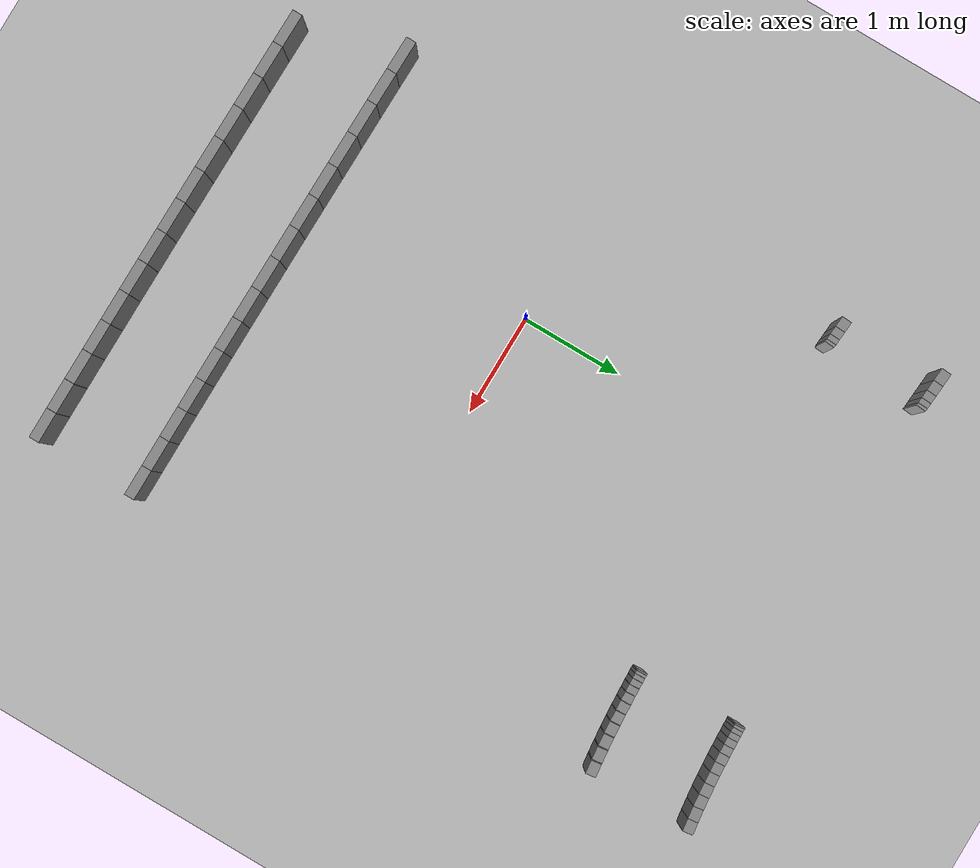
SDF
<sdf version="1.6">
 <world name="default">
  <include><uri>model://ground_plane</uri></include>
  <include><uri>model://sun</uri></include>
  <model name="wall_0_outward">
   <static>true</static>
   <link name="link">
    <collision name="collision">
     <geometry><box><size>0.028140372648619457 0.1 1.0</size></box></geometry>
    </collision>
    <visual name="visual">
     <geometry><box><size>0.028140372648619457 0.1 1.0</size></box></geometry>
     <material>
      <script><uri>file://media/materials/scripts/gazebo.material</uri><name>Gazebo/Gray</name></script>
     </material>
    </visual>
   </link>
   <pose>-1.1622154677570358 2.489480056677835 0.5 0 0 3.0679876131433996</pose>
  </model>
  <model name="wall_1_outward">
   <static>true</static>
   <link name="link">
    <collision name="collision">
     <geometry><box><size>0.055825213619563545 0.1 1.0</size></box></geometry>
    </collision>
    <visual name="visual">
     <geometry><box><size>0.055825213619563545 0.1 1.0</size></box></geometry>
     <material>
      <script><uri>file://media/materials/scripts/gazebo.material</uri><name>Gazebo/Gray</name></script>
     </material>
    </visual>
   </link>
   <pose>-1.20408429808078 2.49257132808138 0.5 0 0 3.067846946948879</pose>
  </model>
  <model name="wall_2_outward">
   <static>true</static>
   <link name="link">
    <collision name="collision">
     <geometry><box><size>0.08244396965421265 0.1 1.0</size></box></geometry>
    </collision>
    <visual name="visual">
     <geometry><box><size>0.08244396965421265 0.1 1.0</size></box></geometry>
     <material>
      <script><uri>file://media/materials/scripts/gazebo.material</uri><name>Gazebo/Gray</name></script>
     </material>
    </visual>
   </link>
   <pose>-1.2730303313313385 2.4976738967459715 0.5 0 0 3.0676326591313265</pose>
  </model>
  <model name="wall_3_outward">
   <static>true</static>
   <link name="link">
    <collision name="collision">
     <geometry><box><size>0.10753430926952938 0.1 1.0</size></box></geometry>
    </collision>
    <visual name="visual">
     <geometry><box><size>0.10753430926952938 0.1 1.0</size></box></geometry>
     <material>
      <script><uri>file://media/materials/scripts/gazebo.material</uri><name>Gazebo/Gray</name></script>
     </material>
    </visual>
   </link>
   <pose>-1.3677589461420014 2.504704263168981 0.5 0 0 3.0674205477627536</pose>
  </model>
  <model name="wall_117_outward">
   <static>true</static>
   <link name="link">
    <collision name="collision">
     <geometry><box><size>0.3343492521348256 0.1 1.0</size></box></geometry>
    </collision>
    <visual name="visual">
     <geometry><box><size>0.3343492521348256 0.1 1.0</size></box></geometry>
     <material>
      <script><uri>file://media/materials/scripts/gazebo.material</uri><name>Gazebo/Gray</name></script>
     </material>
    </visual>
   </link>
   <pose>-1.4172659547280226 -2.1549819348031547 0.5 0 0 -0.021630708846978396</pose>
  </model>
  <model name="wall_118_outward">
   <static>true</static>
   <link name="link">
    <collision name="collision">
     <geometry><box><size>0.33450129369341125 0.1 1.0</size></box></geometry>
    </collision>
    <visual name="visual">
     <geometry><box><size>0.33450129369341125 0.1 1.0</size></box></geometry>
     <material>
      <script><uri>file://media/materials/scripts/gazebo.material</uri><name>Gazebo/Gray</name></script>
     </material>
    </visual>
   </link>
   <pose>-1.0829128476204746 -2.1619229361456433 0.5 0 0 -0.01988271388038462</pose>
  </model>
  <model name="wall_119_outward">
   <static>true</static>
   <link name="link">
    <collision name="collision">
     <geometry><box><size>0.33388144293123556 0.1 1.0</size></box></geometry>
    </collision>
    <visual name="visual">
     <geometry><box><size>0.33388144293123556 0.1 1.0</size></box></geometry>
     <material>
      <script><uri>file://media/materials/scripts/gazebo.material</uri><name>Gazebo/Gray</name></script>
     </material>
    </visual>
   </link>
   <pose>-0.7487831376515343 -2.1683381543103275 0.5 0 0 -0.018510863924873746</pose>
  </model>
  <model name="wall_120_outward">
   <static>true</static>
   <link name="link">
    <collision name="collision">
     <geometry><box><size>0.33264679299315847 0.1 1.0</size></box></geometry>
    </collision>
    <visual name="visual">
     <geometry><box><size>0.33264679299315847 0.1 1.0</size></box></geometry>
     <material>
      <script><uri>file://media/materials/scripts/gazebo.material</uri><name>Gazebo/Gray</name></script>
     </material>
    </visual>
   </link>
   <pose>-0.4155727695194471 -2.174320463714849 0.5 0 0 -0.01739030556445779</pose>
  </model>
  <model name="wall_121_outward">
   <static>true</static>
   <link name="link">
    <collision name="collision">
     <geometry><box><size>0.33093459077308524 0.1 1.0</size></box></geometry>
    </collision>
    <visual name="visual">
     <geometry><box><size>0.33093459077308524 0.1 1.0</size></box></geometry>
     <material>
      <script><uri>file://media/materials/scripts/gazebo.material</uri><name>Gazebo/Gray</name></script>
     </material>
    </visual>
   </link>
   <pose>-0.08382952784442027 -2.1799292794613083 0.5 0 0 -0.016418162189786967</pose>
  </model>
  <model name="wall_122_outward">
   <static>true</static>
   <link name="link">
    <collision name="collision">
     <geometry><box><size>0.32886352233430943 0.1 1.0</size></box></geometry>
    </collision>
    <visual name="visual">
     <geometry><box><size>0.32886352233430943 0.1 1.0</size></box></geometry>
     <material>
      <script><uri>file://media/materials/scripts/gazebo.material</uri><name>Gazebo/Gray</name></script>
     </material>
    </visual>
   </link>
   <pose>0.24602744488529366 -2.1851964155968027 0.5 0 0 -0.015512158752550801</pose>
  </model>
  <model name="wall_123_outward">
   <static>true</static>
   <link name="link">
    <collision name="collision">
     <geometry><box><size>0.32653154499854453 0.1 1.0</size></box></geometry>
    </collision>
    <visual name="visual">
     <geometry><box><size>0.32653154499854453 0.1 1.0</size></box></geometry>
     <material>
      <script><uri>file://media/materials/scripts/gazebo.material</uri><name>Gazebo/Gray</name></script>
     </material>
    </visual>
   </link>
   <pose>0.5736877673115767 -2.190132497778353 0.5 0 0 -0.014611622145655223</pose>
  </model>
  <model name="wall_124_outward">
   <static>true</static>
   <link name="link">
    <collision name="collision">
     <geometry><box><size>0.3240164192819175 0.1 1.0</size></box></geometry>
    </collision>
    <visual name="visual">
     <geometry><box><size>0.3240164192819175 0.1 1.0</size></box></geometry>
     <material>
      <script><uri>file://media/materials/scripts/gazebo.material</uri><name>Gazebo/Gray</name></script>
     </material>
    </visual>
   </link>
   <pose>0.8989291843758371 -2.1947325661140438 0.5 0 0 -0.01366995180546447</pose>
  </model>
  <model name="wall_125_outward">
   <static>true</static>
   <link name="link">
    <collision name="collision">
     <geometry><box><size>0.32137712179323413 0.1 1.0</size></box></geometry>
    </collision>
    <visual name="visual">
     <geometry><box><size>0.32137712179323413 0.1 1.0</size></box></geometry>
     <material>
      <script><uri>file://media/materials/scripts/gazebo.material</uri><name>Gazebo/Gray</name></script>
     </material>
    </visual>
   </link>
   <pose>1.221597938526929 -2.1989816038408705 0.5 0 0 -0.012661241276962897</pose>
  </model>
  <model name="wall_126_outward">
   <static>true</static>
   <link name="link">
    <collision name="collision">
     <geometry><box><size>0.3186509595862095 0.1 1.0</size></box></geometry>
    </collision>
    <visual name="visual">
     <geometry><box><size>0.3186509595862095 0.1 1.0</size></box></geometry>
     <material>
      <script><uri>file://media/materials/scripts/gazebo.material</uri><name>Gazebo/Gray</name></script>
     </material>
    </visual>
   </link>
   <pose>1.5415884359099705 -2.2028594035083384 0.5 0 0 -0.011569891479919754</pose>
  </model>
  <model name="wall_127_outward">
   <static>true</static>
   <link name="link">
    <collision name="collision">
     <geometry><box><size>0.3158594668355228 0.1 1.0</size></box></geometry>
    </collision>
    <visual name="visual">
     <geometry><box><size>0.3158594668355228 0.1 1.0</size></box></geometry>
     <material>
      <script><uri>file://media/materials/scripts/gazebo.material</uri><name>Gazebo/Gray</name></script>
     </material>
    </visual>
   </link>
   <pose>1.8588244734232942 -2.206342409893896 0.5 0 0 -0.010382455688424623</pose>
  </model>
  <model name="wall_128_outward">
   <static>true</static>
   <link name="link">
    <collision name="collision">
     <geometry><box><size>0.3130063467733465 0.1 1.0</size></box></geometry>
    </collision>
    <visual name="visual">
     <geometry><box><size>0.3130063467733465 0.1 1.0</size></box></geometry>
     <material>
      <script><uri>file://media/materials/scripts/gazebo.material</uri><name>Gazebo/Gray</name></script>
     </material>
    </visual>
   </link>
   <pose>2.173242403721133 -2.2094045410623773 0.5 0 0 -0.009089155976046625</pose>
  </model>
  <model name="wall_129_outward">
   <static>true</static>
   <link name="link">
    <collision name="collision">
     <geometry><box><size>0.3100769272049285 0.1 1.0</size></box></geometry>
    </collision>
    <visual name="visual">
     <geometry><box><size>0.3100769272049285 0.1 1.0</size></box></geometry>
     <material>
      <script><uri>file://media/materials/scripts/gazebo.material</uri><name>Gazebo/Gray</name></script>
     </material>
    </visual>
   </link>
   <pose>2.484773004230438 -2.2120176474997324 0.5 0 0 -0.007679745694210032</pose>
  </model>
  <model name="wall_130_outward">
   <static>true</static>
   <link name="link">
    <collision name="collision">
     <geometry><box><size>0.3070367761473882 0.1 1.0</size></box></geometry>
    </collision>
    <visual name="visual">
     <geometry><box><size>0.3070367761473882 0.1 1.0</size></box></geometry>
     <material>
      <script><uri>file://media/materials/scripts/gazebo.material</uri><name>Gazebo/Gray</name></script>
     </material>
    </visual>
   </link>
   <pose>2.7933224042082534 -2.2141486012222606 0.5 0 0 -0.006125099048085566</pose>
  </model>
  <model name="wall_131_outward">
   <static>true</static>
   <link name="link">
    <collision name="collision"><geometry><box><size>0.303830010964234 0.1 1.0</size></box></geometry></collision>
    <visual name="visual">
     <geometry><box><size>0.303830010964234 0.1 1.0</size></box></geometry>
     <material>
      <script><uri>file://media/materials/scripts/gazebo.material</uri><name>Gazebo/Gray</name></script>
     </material>
    </visual>
   </link>
   <pose>3.098751464220999 -2.215753517969673 0.5 0 0 -0.00437487667725614</pose>
  </model>
  <model name="wall_303_outward">
   <static>true</static>
   <link name="link">
    <collision name="collision">
     <geometry><box><size>0.13046753921735724 0.1 1.0</size></box></geometry>
    </collision>
    <visual name="visual">
     <geometry><box><size>0.13046753921735724 0.1 1.0</size></box></geometry>
     <material>
      <script><uri>file://media/materials/scripts/gazebo.material</uri><name>Gazebo/Gray</name></script>
     </material>
    </visual>
   </link>
   <pose>3.207739968030117 2.60791717843035 0.5 0 0 -3.0229993824089467</pose>
  </model>
  <model name="wall_304_outward">
   <static>true</static>
   <link name="link">
    <collision name="collision">
     <geometry><box><size>0.008949121451481638 0.1 1.0</size></box></geometry>
    </collision>
    <visual name="visual">
     <geometry><box><size>0.008949121451481638 0.1 1.0</size></box></geometry>
     <material>
      <script><uri>file://media/materials/scripts/gazebo.material</uri><name>Gazebo/Gray</name></script>
     </material>
    </visual>
   </link>
   <pose>3.1385167052676533 2.599709387415867 0.5 0 0 -3.0319486233158</pose>
  </model>
  <model name="wall_305_outward">
   <static>true</static>
   <link name="link">
    <collision name="collision">
     <geometry><box><size>0.12624586399154972 0.1 1.0</size></box></geometry>
    </collision>
    <visual name="visual">
     <geometry><box><size>0.12624586399154972 0.1 1.0</size></box></geometry>
     <material>
      <script><uri>file://media/materials/scripts/gazebo.material</uri><name>Gazebo/Gray</name></script>
     </material>
    </visual>
   </link>
   <pose>3.071265827081879 2.5928743464705697 0.5 0 0 -3.040897864222612</pose>
  </model>
  <model name="wall_306_outward">
   <static>true</static>
   <link name="link">
    <collision name="collision">
     <geometry><box><size>0.007505698256718448 0.1 1.0</size></box></geometry>
    </collision>
    <visual name="visual">
     <geometry><box><size>0.007505698256718448 0.1 1.0</size></box></geometry>
     <material>
      <script><uri>file://media/materials/scripts/gazebo.material</uri><name>Gazebo/Gray</name></script>
     </material>
    </visual>
   </link>
   <pose>3.004726074705722 2.5861797136106315 0.5 0 0 -3.0484036329540096</pose>
  </model>
  <model name="wall_307_outward">
   <static>true</static>
   <link name="link">
    <collision name="collision">
     <geometry><box><size>0.12064989694440542 0.1 1.0</size></box></geometry>
    </collision>
    <visual name="visual">
     <geometry><box><size>0.12064989694440542 0.1 1.0</size></box></geometry>
     <material>
      <script><uri>file://media/materials/scripts/gazebo.material</uri><name>Gazebo/Gray</name></script>
     </material>
    </visual>
   </link>
   <pose>2.940885866518805 2.5806679797645042 0.5 0 0 -3.0559094016853923</pose>
  </model>
  <model name="wall_308_outward">
   <static>true</static>
   <link name="link">
    <collision name="collision">
     <geometry><box><size>0.006214637166314889 0.1 1.0</size></box></geometry>
    </collision>
    <visual name="visual">
     <geometry><box><size>0.006214637166314889 0.1 1.0</size></box></geometry>
     <material>
      <script><uri>file://media/materials/scripts/gazebo.material</uri><name>Gazebo/Gray</name></script>
     </material>
    </visual>
   </link>
   <pose>2.8776847120232025 2.5752587899416026 0.5 0 0 -3.0621240788556916</pose>
  </model>
  <model name="wall_309_outward">
   <static>true</static>
   <link name="link">
    <collision name="collision">
     <geometry><box><size>0.11366733680068042 0.1 1.0</size></box></geometry>
    </collision>
    <visual name="visual">
     <geometry><box><size>0.11366733680068042 0.1 1.0</size></box></geometry>
     <material>
      <script><uri>file://media/materials/scripts/gazebo.material</uri><name>Gazebo/Gray</name></script>
     </material>
    </visual>
   </link>
   <pose>2.817905951979694 2.5708525503267445 0.5 0 0 -3.068338756026061</pose>
  </model>
  <model name="wall_310_outward">
   <static>true</static>
   <link name="link">
    <collision name="collision">
     <geometry><box><size>0.005069601279111928 0.1 1.0</size></box></geometry>
    </collision>
    <visual name="visual">
     <geometry><box><size>0.005069601279111928 0.1 1.0</size></box></geometry>
     <material>
      <script><uri>file://media/materials/scripts/gazebo.material</uri><name>Gazebo/Gray</name></script>
     </material>
    </visual>
   </link>
   <pose>2.7586957932711247 2.5665202854103226 0.5 0 0 -3.07340837902098</pose>
  </model>
  <model name="wall_311_outward">
   <static>true</static>
   <link name="link">
    <collision name="collision">
     <geometry><box><size>0.10531123472927832 0.1 1.0</size></box></geometry>
    </collision>
    <visual name="visual">
     <geometry><box><size>0.10531123472927832 0.1 1.0</size></box></geometry>
     <material>
      <script><uri>file://media/materials/scripts/gazebo.material</uri><name>Gazebo/Gray</name></script>
     </material>
    </visual>
   </link>
   <pose>2.703616106192793 2.5630264507724183 0.5 0 0 -3.07847800201582</pose>
  </model>
  <model name="wall_312_outward">
   <static>true</static>
   <link name="link">
    <collision name="collision">
     <geometry><box><size>0.0040732172462499446 0.1 1.0</size></box></geometry>
    </collision>
    <visual name="visual">
     <geometry><box><size>0.0040732172462499446 0.1 1.0</size></box></geometry>
     <material>
      <script><uri>file://media/materials/scripts/gazebo.material</uri><name>Gazebo/Gray</name></script>
     </material>
    </visual>
   </link>
   <pose>2.649032269813892 2.55958514136469 0.5 0 0 -3.082551230525299</pose>
  </model>
  <model name="wall_313_outward">
   <static>true</static>
   <link name="link">
    <collision name="collision">
     <geometry><box><size>0.0956206454724584 0.1 1.0</size></box></geometry>
    </collision>
    <visual name="visual">
     <geometry><box><size>0.0956206454724584 0.1 1.0</size></box></geometry>
     <material>
      <script><uri>file://media/materials/scripts/gazebo.material</uri><name>Gazebo/Gray</name></script>
     </material>
    </visual>
   </link>
   <pose>2.5992610984377293 2.556838243060853 0.5 0 0 -3.086624459034872</pose>
  </model>
  <model name="wall_314_outward">
   <static>true</static>
   <link name="link">
    <collision name="collision">
     <geometry><box><size>0.0032147562011742513 0.1 1.0</size></box></geometry>
    </collision>
    <visual name="visual">
     <geometry><box><size>0.0032147562011742513 0.1 1.0</size></box></geometry>
     <material>
      <script><uri>file://media/materials/scripts/gazebo.material</uri><name>Gazebo/Gray</name></script>
     </material>
    </visual>
   </link>
   <pose>2.5499177610533317 2.554128368976377 0.5 0 0 -3.0898392207733476</pose>
  </model>
  <model name="wall_315_outward">
   <static>true</static>
   <link name="link">
    <collision name="collision">
     <geometry><box><size>0.08466341760344048 0.1 1.0</size></box></geometry>
    </collision>
    <visual name="visual">
     <geometry><box><size>0.08466341760344048 0.1 1.0</size></box></geometry>
     <material>
      <script><uri>file://media/materials/scripts/gazebo.material</uri><name>Gazebo/Gray</name></script>
     </material>
    </visual>
   </link>
   <pose>2.506030683303695 2.551991300610061 0.5 0 0 -3.09305398251174</pose>
  </model>
  <model name="wall_316_outward">
   <static>true</static>
   <link name="link">
    <collision name="collision">
     <geometry><box><size>0.0024870756125042405 0.1 1.0</size></box></geometry>
    </collision>
    <visual name="visual">
     <geometry><box><size>0.0024870756125042405 0.1 1.0</size></box></geometry>
     <material>
      <script><uri>file://media/materials/scripts/gazebo.material</uri><name>Gazebo/Gray</name></script>
     </material>
    </visual>
   </link>
   <pose>2.4625066120966403 2.549880135790681 0.5 0 0 -3.0955410606882756</pose>
  </model>
  <model name="wall_317_outward">
   <static>true</static>
   <link name="link">
    <collision name="collision">
     <geometry><box><size>0.07253846112976793 0.1 1.0</size></box></geometry>
    </collision>
    <visual name="visual">
     <geometry><box><size>0.07253846112976793 0.1 1.0</size></box></geometry>
     <material>
      <script><uri>file://media/materials/scripts/gazebo.material</uri><name>Gazebo/Gray</name></script>
     </material>
    </visual>
   </link>
   <pose>2.4250295737523553 2.548243337444639 0.5 0 0 -3.0980281388647355</pose>
  </model>
  <model name="wall_318_outward">
   <static>true</static>
   <link name="link">
    <collision name="collision">
     <geometry><box><size>0.0018633351127018652 0.1 1.0</size></box></geometry>
    </collision>
    <visual name="visual">
     <geometry><box><size>0.0018633351127018652 0.1 1.0</size></box></geometry>
     <material>
      <script><uri>file://media/materials/scripts/gazebo.material</uri><name>Gazebo/Gray</name></script>
     </material>
    </visual>
   </link>
   <pose>2.3878638972371826 2.5466249453804424 0.5 0 0 -3.0998914750555246</pose>
  </model>
  <model name="wall_319_outward">
   <static>true</static>
   <link name="link">
    <collision name="collision">
     <geometry><box><size>0.05937721278257338 0.1 1.0</size></box></geometry>
    </collision>
    <visual name="visual">
     <geometry><box><size>0.05937721278257338 0.1 1.0</size></box></geometry>
     <material>
      <script><uri>file://media/materials/scripts/gazebo.material</uri><name>Gazebo/Gray</name></script>
     </material>
    </visual>
   </link>
   <pose>2.357267988842117 2.545403687801829 0.5 0 0 -3.101754811246653</pose>
  </model>
  <model name="wall_320_outward">
   <static>true</static>
   <link name="link">
    <collision name="collision">
     <geometry><box><size>0.0013483112834920489 0.1 1.0</size></box></geometry>
    </collision>
    <visual name="visual">
     <geometry><box><size>0.0013483112834920489 0.1 1.0</size></box></geometry>
     <material>
      <script><uri>file://media/materials/scripts/gazebo.material</uri><name>Gazebo/Gray</name></script>
     </material>
    </visual>
   </link>
   <pose>2.326929281699816 2.5441953290708983 0.5 0 0 -3.1031031229387716</pose>
  </model>
  <model name="wall_321_outward">
   <static>true</static>
   <link name="link">
    <collision name="collision">
     <geometry><box><size>0.04534154176574482 0.1 1.0</size></box></geometry>
    </collision>
    <visual name="visual">
     <geometry><box><size>0.04534154176574482 0.1 1.0</size></box></geometry>
     <material>
      <script><uri>file://media/materials/scripts/gazebo.material</uri><name>Gazebo/Gray</name></script>
     </material>
    </visual>
   </link>
   <pose>2.303600489503803 2.543327561054495 0.5 0 0 -3.104451434630689</pose>
  </model>
  <model name="wall_322_outward">
   <static>true</static>
   <link name="link">
    <collision name="collision">
     <geometry><box><size>0.0009135970784180047 0.1 1.0</size></box></geometry>
    </collision>
    <visual name="visual">
     <geometry><box><size>0.0009135970784180047 0.1 1.0</size></box></geometry>
     <material>
      <script><uri>file://media/materials/scripts/gazebo.material</uri><name>Gazebo/Gray</name></script>
     </material>
    </visual>
   </link>
   <pose>2.280488854837753 2.542469189461003 0.5 0 0 -3.1053650318361288</pose>
  </model>
  <model name="wall_323_outward">
   <static>true</static>
   <link name="link">
    <collision name="collision">
     <geometry><box><size>0.030621175903839427 0.1 1.0</size></box></geometry>
    </collision>
    <visual name="visual">
     <geometry><box><size>0.030621175903839427 0.1 1.0</size></box></geometry>
     <material>
      <script><uri>file://media/materials/scripts/gazebo.material</uri><name>Gazebo/Gray</name></script>
     </material>
    </visual>
   </link>
   <pose>2.2647313138487557 2.5419120782484015 0.5 0 0 -3.106278629041706</pose>
  </model>
  <model name="wall_324_outward">
   <static>true</static>
   <link name="link">
    <collision name="collision">
     <geometry><box><size>0.0005376412775519356 0.1 1.0</size></box></geometry>
    </collision>
    <visual name="visual">
     <geometry><box><size>0.0005376412775519356 0.1 1.0</size></box></geometry>
     <material>
      <script><uri>file://media/materials/scripts/gazebo.material</uri><name>Gazebo/Gray</name></script>
     </material>
    </visual>
   </link>
   <pose>2.2491616135715375 2.5413621654155554 0.5 0 0 -3.1068162703456066</pose>
  </model>
  <model name="wall_325_outward">
   <static>true</static>
   <link name="link">
    <collision name="collision">
     <geometry><box><size>0.015429990358384568 0.1 1.0</size></box></geometry>
    </collision>
    <visual name="visual">
     <geometry><box><size>0.015429990358384568 0.1 1.0</size></box></geometry>
     <material>
      <script><uri>file://media/materials/scripts/gazebo.material</uri><name>Gazebo/Gray</name></script>
     </material>
    </visual>
   </link>
   <pose>2.2411824819622908 2.5410887185686724 0.5 0 0 -3.107353911648613</pose>
  </model>
  <model name="wall_0_inward">
   <static>true</static>
   <link name="link">
    <collision name="collision">
     <geometry><box><size>0.028105183917032178 0.1 1.0</size></box></geometry>
    </collision>
    <visual name="visual">
     <geometry><box><size>0.028105183917032178 0.1 1.0</size></box></geometry>
     <material>
      <script><uri>file://media/materials/scripts/gazebo.material</uri><name>Gazebo/Gray</name></script>
     </material>
    </visual>
   </link>
   <pose>-1.0886593242782392 3.4867711345814163 0.5 0 0 3.0679876131433965</pose>
  </model>
  <model name="wall_1_inward">
   <static>true</static>
   <link name="link">
    <collision name="collision">
     <geometry><box><size>0.055666062833797623 0.1 1.0</size></box></geometry>
    </collision>
    <visual name="visual">
     <geometry><box><size>0.055666062833797623 0.1 1.0</size></box></geometry>
     <material>
      <script><uri>file://media/materials/scripts/gazebo.material</uri><name>Gazebo/Gray</name></script>
     </material>
    </visual>
   </link>
   <pose>-1.130431248584888 3.4898552515567816 0.5 0 0 3.0678468582257628</pose>
  </model>
  <model name="wall_2_inward">
   <static>true</static>
   <link name="link">
    <collision name="collision">
     <geometry><box><size>0.08223019669286277 0.1 1.0</size></box></geometry>
    </collision>
    <visual name="visual">
     <geometry><box><size>0.08223019669286277 0.1 1.0</size></box></geometry>
     <material>
      <script><uri>file://media/materials/scripts/gazebo.material</uri><name>Gazebo/Gray</name></script>
     </material>
    </visual>
   </link>
   <pose>-1.1991913278468374 3.494944067251871 0.5 0 0 3.067632519821713</pose>
  </model>
  <model name="wall_3_inward">
   <static>true</static>
   <link name="link">
    <collision name="collision">
     <geometry><box><size>0.10733725442025505 0.1 1.0</size></box></geometry>
    </collision>
    <visual name="visual">
     <geometry><box><size>0.10733725442025505 0.1 1.0</size></box></geometry>
     <material>
      <script><uri>file://media/materials/scripts/gazebo.material</uri><name>Gazebo/Gray</name></script>
     </material>
    </visual>
   </link>
   <pose>-1.2937150910188486 3.5019592455773236 0.5 0 0 3.067420443199626</pose>
  </model>
  <model name="wall_4_inward">
   <static>true</static>
   <link name="link">
    <collision name="collision">
     <geometry><box><size>0.13058685729663236 0.1 1.0</size></box></geometry>
    </collision>
    <visual name="visual">
     <geometry><box><size>0.13058685729663236 0.1 1.0</size></box></geometry>
     <material>
      <script><uri>file://media/materials/scripts/gazebo.material</uri><name>Gazebo/Gray</name></script>
     </material>
    </visual>
   </link>
   <pose>-1.4123493248439891 3.5107847324103134 0.5 0 0 3.0672684536841874</pose>
  </model>
  <model name="wall_228_inward">
   <static>true</static>
   <link name="link">
    <collision name="collision">
     <geometry><box><size>0.0008739973720259871 0.1 1.0</size></box></geometry>
    </collision>
    <visual name="visual">
     <geometry><box><size>0.0008739973720259871 0.1 1.0</size></box></geometry>
     <material>
      <script><uri>file://media/materials/scripts/gazebo.material</uri><name>Gazebo/Gray</name></script>
     </material>
    </visual>
   </link>
   <pose>-1.2708856575219625 -3.1583823456853173 0.5 0 0 -0.02075671136366923</pose>
  </model>
  <model name="wall_229_inward">
   <static>true</static>
   <link name="link">
    <collision name="collision">
     <geometry><box><size>0.3352812550892098 0.1 1.0</size></box></geometry>
    </collision>
    <visual name="visual">
     <geometry><box><size>0.3352812550892098 0.1 1.0</size></box></geometry>
     <material>
      <script><uri>file://media/materials/scripts/gazebo.material</uri><name>Gazebo/Gray</name></script>
     </material>
    </visual>
   </link>
   <pose>-1.1028412603750213 -3.161724346714658 0.5 0 0 -0.019882713880385216</pose>
  </model>
  <model name="wall_230_inward">
   <static>true</static>
   <link name="link">
    <collision name="collision">
     <geometry><box><size>0.0006859249239686842 0.1 1.0</size></box></geometry>
    </collision>
    <visual name="visual">
     <geometry><box><size>0.0006859249239686842 0.1 1.0</size></box></geometry>
     <material>
      <script><uri>file://media/materials/scripts/gazebo.material</uri><name>Gazebo/Gray</name></script>
     </material>
    </visual>
   </link>
   <pose>-0.934890868508756 -3.1650638611133477 0.5 0 0 -0.01919678890304701</pose>
  </model>
  <model name="wall_231_inward">
   <static>true</static>
   <link name="link">
    <collision name="collision">
     <geometry><box><size>0.3345045450928907 0.1 1.0</size></box></geometry>
    </collision>
    <visual name="visual">
     <geometry><box><size>0.3345045450928907 0.1 1.0</size></box></geometry>
     <material>
      <script><uri>file://media/materials/scripts/gazebo.material</uri><name>Gazebo/Gray</name></script>
     </material>
    </visual>
   </link>
   <pose>-0.7673243505436858 -3.168166251740665 0.5 0 0 -0.01851086392487363</pose>
  </model>
  <model name="wall_232_inward">
   <static>true</static>
   <link name="link">
    <collision name="collision">
     <geometry><box><size>0.0005602791508951867 0.1 1.0</size></box></geometry>
    </collision>
    <visual name="visual">
     <geometry><box><size>0.0005602791508951867 0.1 1.0</size></box></geometry>
     <material>
      <script><uri>file://media/materials/scripts/gazebo.material</uri><name>Gazebo/Gray</name></script>
     </material>
    </visual>
   </link>
   <pose>-0.5998206374059589 -3.171267087393497 0.5 0 0 -0.0179505847442285</pose>
  </model>
  <model name="wall_233_inward">
   <static>true</static>
   <link name="link">
    <collision name="collision">
     <geometry><box><size>0.33365604008679656 0.1 1.0</size></box></geometry>
    </collision>
    <visual name="visual">
     <geometry><box><size>0.33365604008679656 0.1 1.0</size></box></geometry>
     <material>
      <script><uri>file://media/materials/scripts/gazebo.material</uri><name>Gazebo/Gray</name></script>
     </material>
    </visual>
   </link>
   <pose>-0.4327377465221457 -3.1741730416941616 0.5 0 0 -0.017389597452995093</pose>
  </model>
  <model name="wall_234_inward">
   <static>true</static>
   <link name="link">
    <collision name="collision">
     <geometry><box><size>0.3318571291669647 0.1 1.0</size></box></geometry>
    </collision>
    <visual name="visual">
     <geometry><box><size>0.3318571291669647 0.1 1.0</size></box></geometry>
     <material>
      <script><uri>file://media/materials/scripts/gazebo.material</uri><name>Gazebo/Gray</name></script>
     </material>
    </visual>
   </link>
   <pose>-0.1000287468351033 -3.1797979847018256 0.5 0 0 -0.016417543819636112</pose>
  </model>
  <model name="wall_235_inward">
   <static>true</static>
   <link name="link">
    <collision name="collision">
     <geometry><box><size>0.3297654256186966 0.1 1.0</size></box></geometry>
    </collision>
    <visual name="visual">
     <geometry><box><size>0.3297654256186966 0.1 1.0</size></box></geometry>
     <material>
      <script><uri>file://media/materials/scripts/gazebo.material</uri><name>Gazebo/Gray</name></script>
     </material>
    </visual>
   </link>
   <pose>0.2307403335685589 -3.1850794846924924 0.5 0 0 -0.015511543947250924</pose>
  </model>
  <model name="wall_236_inward">
   <static>true</static>
   <link name="link">
    <collision name="collision">
     <geometry><box><size>0.3274629318687377 0.1 1.0</size></box></geometry>
    </collision>
    <visual name="visual">
     <geometry><box><size>0.3274629318687377 0.1 1.0</size></box></geometry>
     <material>
      <script><uri>file://media/materials/scripts/gazebo.material</uri><name>Gazebo/Gray</name></script>
     </material>
    </visual>
   </link>
   <pose>0.5593172002977445 -3.1900291539317447 0.5 0 0 -0.014610945166005198</pose>
  </model>
  <model name="wall_237_inward">
   <static>true</static>
   <link name="link">
    <collision name="collision">
     <geometry><box><size>0.3245040145375153 0.1 1.0</size></box></geometry>
    </collision>
    <visual name="visual">
     <geometry><box><size>0.3245040145375153 0.1 1.0</size></box></geometry>
     <material>
      <script><uri>file://media/materials/scripts/gazebo.material</uri><name>Gazebo/Gray</name></script>
     </material>
    </visual>
   </link>
   <pose>0.8852680375540438 -3.1946392483288086 0.5 0 0 -0.013669951805465387</pose>
  </model>
  <model name="wall_238_inward">
   <static>true</static>
   <link name="link">
    <collision name="collision">
     <geometry><box><size>0.0005043552428692558 0.1 1.0</size></box></geometry>
    </collision>
    <visual name="visual">
     <geometry><box><size>0.0005043552428692558 0.1 1.0</size></box></geometry>
     <material>
      <script><uri>file://media/materials/scripts/gazebo.material</uri><name>Gazebo/Gray</name></script>
     </material>
    </visual>
   </link>
   <pose>1.0477570410051142 -3.196860476344063 0.5 0 0 -0.01316559654074366</pose>
  </model>
  <model name="wall_239_inward">
   <static>true</static>
   <link name="link">
    <collision name="collision">
     <geometry><box><size>0.32190213692352027 0.1 1.0</size></box></geometry>
    </collision>
    <visual name="visual">
     <geometry><box><size>0.32190213692352027 0.1 1.0</size></box></geometry>
     <material>
      <script><uri>file://media/materials/scripts/gazebo.material</uri><name>Gazebo/Gray</name></script>
     </material>
    </visual>
   </link>
   <pose>1.2089473646116868 -3.198901582182298 0.5 0 0 -0.012661241276961782</pose>
  </model>
  <model name="wall_240_inward">
   <static>true</static>
   <link name="link">
    <collision name="collision">
     <geometry><box><size>0.0005456748714405648 0.1 1.0</size></box></geometry>
    </collision>
    <visual name="visual">
     <geometry><box><size>0.0005456748714405648 0.1 1.0</size></box></geometry>
     <material>
      <script><uri>file://media/materials/scripts/gazebo.material</uri><name>Gazebo/Gray</name></script>
     </material>
    </visual>
   </link>
   <pose>1.37015834986333 -3.20094267354682 0.5 0 0 -0.012115566378845855</pose>
  </model>
  <model name="wall_241_inward">
   <static>true</static>
   <link name="link">
    <collision name="collision">
     <geometry><box><size>0.31922065604520555 0.1 1.0</size></box></geometry>
    </collision>
    <visual name="visual">
     <geometry><box><size>0.31922065604520555 0.1 1.0</size></box></geometry>
     <material>
      <script><uri>file://media/materials/scripts/gazebo.material</uri><name>Gazebo/Gray</name></script>
     </material>
    </visual>
   </link>
   <pose>1.5300308125066824 -3.2027926120205503 0.5 0 0 -0.011569891479920337</pose>
  </model>
  <model name="wall_242_inward">
   <static>true</static>
   <link name="link">
    <collision name="collision">
     <geometry><box><size>0.0005937178608673515 0.1 1.0</size></box></geometry>
    </collision>
    <visual name="visual">
     <geometry><box><size>0.0005937178608673515 0.1 1.0</size></box></geometry>
     <material>
      <script><uri>file://media/materials/scripts/gazebo.material</uri><name>Gazebo/Gray</name></script>
     </material>
    </visual>
   </link>
   <pose>1.6899272987869245 -3.2046425033048105 0.5 0 0 -0.010976173584378272</pose>
  </model>
  <model name="wall_243_inward">
   <static>true</static>
   <link name="link">
    <collision name="collision">
     <geometry><box><size>0.31647965079166984 0.1 1.0</size></box></geometry>
    </collision>
    <visual name="visual">
     <geometry><box><size>0.31647965079166984 0.1 1.0</size></box></geometry>
     <material>
      <script><uri>file://media/materials/scripts/gazebo.material</uri><name>Gazebo/Gray</name></script>
     </material>
    </visual>
   </link>
   <pose>1.848455436546201 -3.206288650073514 0.5 0 0 -0.010382455688422181</pose>
  </model>
  <model name="wall_244_inward">
   <static>true</static>
   <link name="link">
    <collision name="collision">
     <geometry><box><size>0.000646649811121547 0.1 1.0</size></box></geometry>
    </collision>
    <visual name="visual">
     <geometry><box><size>0.000646649811121547 0.1 1.0</size></box></geometry>
     <material>
      <script><uri>file://media/materials/scripts/gazebo.material</uri><name>Gazebo/Gray</name></script>
     </material>
    </visual>
   </link>
   <pose>2.007010042839468 -3.2079346863112663 0.5 0 0 -0.009735805832901788</pose>
  </model>
  <model name="wall_245_inward">
   <static>true</static>
   <link name="link">
    <collision name="collision">
     <geometry><box><size>0.3136820243749564 0.1 1.0</size></box></geometry>
    </collision>
    <visual name="visual">
     <geometry><box><size>0.3136820243749564 0.1 1.0</size></box></geometry>
     <material>
      <script><uri>file://media/materials/scripts/gazebo.material</uri><name>Gazebo/Gray</name></script>
     </material>
    </visual>
   </link>
   <pose>2.164167886119742 -3.2093633668851975 0.5 0 0 -0.009089155976046396</pose>
  </model>
  <model name="wall_246_inward">
   <static>true</static>
   <link name="link">
    <collision name="collision">
     <geometry><box><size>0.0007047050825915293 0.1 1.0</size></box></geometry>
    </collision>
    <visual name="visual">
     <geometry><box><size>0.0007047050825915293 0.1 1.0</size></box></geometry>
     <material>
      <script><uri>file://media/materials/scripts/gazebo.material</uri><name>Gazebo/Gray</name></script>
     </material>
    </visual>
   </link>
   <pose>2.3213547599740076 -3.2107918539283014 0.5 0 0 -0.008384450835119132</pose>
  </model>
  <model name="wall_247_inward">
   <static>true</static>
   <link name="link">
    <collision name="collision">
     <geometry><box><size>0.3108179415734492 0.1 1.0</size></box></geometry>
    </collision>
    <visual name="visual">
     <geometry><box><size>0.3108179415734492 0.1 1.0</size></box></geometry>
     <material>
      <script><uri>file://media/materials/scripts/gazebo.material</uri><name>Gazebo/Gray</name></script>
     </material>
    </visual>
   </link>
   <pose>2.477111488046086 -3.2119882978187033 0.5 0 0 -0.0076797456942097</pose>
  </model>
  <model name="wall_248_inward">
   <static>true</static>
   <link name="link">
    <collision name="collision">
     <geometry><box><size>0.0007773232447808486 0.1 1.0</size></box></geometry>
    </collision>
    <visual name="visual">
     <geometry><box><size>0.0007773232447808486 0.1 1.0</size></box></geometry>
     <material>
      <script><uri>file://media/materials/scripts/gazebo.material</uri><name>Gazebo/Gray</name></script>
     </material>
    </visual>
   </link>
   <pose>2.632904528325655 -3.213184470146535 0.5 0 0 -0.006902422370985081</pose>
  </model>
  <model name="wall_249_inward">
   <static>true</static>
   <link name="link">
    <collision name="collision">
     <geometry><box><size>0.30786299359165614 0.1 1.0</size></box></geometry>
    </collision>
    <visual name="visual">
     <geometry><box><size>0.30786299359165614 0.1 1.0</size></box></geometry>
     <material>
      <script><uri>file://media/materials/scripts/gazebo.material</uri><name>Gazebo/Gray</name></script>
     </material>
    </visual>
   </link>
   <pose>2.7872217899828096 -3.2141299926009843 0.5 0 0 -0.006125099048086234</pose>
  </model>
  <model name="wall_250_inward">
   <static>true</static>
   <link name="link">
    <collision name="collision">
     <geometry><box><size>0.0008751110737189037 0.1 1.0</size></box></geometry>
    </collision>
    <visual name="visual">
     <geometry><box><size>0.0008751110737189037 0.1 1.0</size></box></geometry>
     <material>
      <script><uri>file://media/materials/scripts/gazebo.material</uri><name>Gazebo/Gray</name></script>
     </material>
    </visual>
   </link>
   <pose>2.941587948782963 -3.2150751295207636 0.5 0 0 -0.005249987862614101</pose>
  </model>
  <model name="wall_251_inward">
   <static>true</static>
   <link name="link">
    <collision name="collision">
     <geometry><box><size>0.3047760033951605 0.1 1.0</size></box></geometry>
    </collision>
    <visual name="visual">
     <geometry><box><size>0.3047760033951605 0.1 1.0</size></box></geometry>
     <material>
      <script><uri>file://media/materials/scripts/gazebo.material</uri><name>Gazebo/Gray</name></script>
     </material>
    </visual>
   </link>
   <pose>3.0944120416711285 -3.2157441032593366 0.5 0 0 -0.004374876677256052</pose>
  </model>
  <model name="wall_502_inward">
   <static>true</static>
   <link name="link">
    <collision name="collision">
     <geometry><box><size>0.12193384485024265 0.1 1.0</size></box></geometry>
    </collision>
    <visual name="visual">
     <geometry><box><size>0.12193384485024265 0.1 1.0</size></box></geometry>
     <material>
      <script><uri>file://media/materials/scripts/gazebo.material</uri><name>Gazebo/Gray</name></script>
     </material>
    </visual>
   </link>
   <pose>3.2093382111849182 3.616475866939828 0.5 0 0 -3.0019120916126494</pose>
  </model>
  <model name="wall_503_inward">
   <static>true</static>
   <link name="link">
    <collision name="collision">
     <geometry><box><size>0.12072078124307793 0.1 1.0</size></box></geometry>
    </collision>
    <visual name="visual">
     <geometry><box><size>0.12072078124307793 0.1 1.0</size></box></geometry>
     <material>
      <script><uri>file://media/materials/scripts/gazebo.material</uri><name>Gazebo/Gray</name></script>
     </material>
    </visual>
   </link>
   <pose>3.089028652193341 3.6008460693411815 0.5 0 0 -3.0229993824089485</pose>
  </model>
  <model name="wall_504_inward">
   <static>true</static>
   <link name="link">
    <collision name="collision">
     <geometry><box><size>0.11801816923631707 0.1 1.0</size></box></geometry>
    </collision>
    <visual name="visual">
     <geometry><box><size>0.11801816923631707 0.1 1.0</size></box></geometry>
     <material>
      <script><uri>file://media/materials/scripts/gazebo.material</uri><name>Gazebo/Gray</name></script>
     </material>
    </visual>
   </link>
   <pose>2.9703820518160624 3.5877726297797423 0.5 0 0 -3.0408978642226105</pose>
  </model>
  <model name="wall_505_inward">
   <static>true</static>
   <link name="link">
    <collision name="collision">
     <geometry><box><size>0.11378956351234816 0.1 1.0</size></box></geometry>
    </collision>
    <visual name="visual">
     <geometry><box><size>0.11378956351234816 0.1 1.0</size></box></geometry>
     <material>
      <script><uri>file://media/materials/scripts/gazebo.material</uri><name>Gazebo/Gray</name></script>
     </material>
    </visual>
   </link>
   <pose>2.8549858144862093 3.5769717914870993 0.5 0 0 -3.0559094016853927</pose>
  </model>
  <model name="wall_506_inward">
   <static>true</static>
   <link name="link">
    <collision name="collision">
     <geometry><box><size>0.10802512499737733 0.1 1.0</size></box></geometry>
    </collision>
    <visual name="visual">
     <geometry><box><size>0.10802512499737733 0.1 1.0</size></box></geometry>
     <material>
      <script><uri>file://media/materials/scripts/gazebo.material</uri><name>Gazebo/Gray</name></script>
     </material>
    </visual>
   </link>
   <pose>2.7444320469295835 3.568149731325838 0.5 0 0 -3.0683387560260598</pose>
  </model>
  <model name="wall_507_inward">
   <static>true</static>
   <link name="link">
    <collision name="collision"><geometry><box><size>0.100739775997654 0.1 1.0</size></box></geometry></collision>
    <visual name="visual">
     <geometry><box><size>0.100739775997654 0.1 1.0</size></box></geometry>
     <material>
      <script><uri>file://media/materials/scripts/gazebo.material</uri><name>Gazebo/Gray</name></script>
     </material>
    </visual>
   </link>
   <pose>2.6402947408493147 3.561019670560891 0.5 0 0 -3.0784780020158204</pose>
  </model>
  <model name="wall_508_inward">
   <static>true</static>
   <link name="link">
    <collision name="collision">
     <geometry><box><size>0.09197663354787783 0.1 1.0</size></box></geometry>
    </collision>
    <visual name="visual">
     <geometry><box><size>0.09197663354787783 0.1 1.0</size></box></geometry>
     <material>
      <script><uri>file://media/materials/scripts/gazebo.material</uri><name>Gazebo/Gray</name></script>
     </material>
    </visual>
   </link>
   <pose>2.544106285389241 3.5553160809016036 0.5 0 0 -3.0866244590348724</pose>
  </model>
  <model name="wall_509_inward">
   <static>true</static>
   <link name="link">
    <collision name="collision">
     <geometry><box><size>0.08181248954468669 0.1 1.0</size></box></geometry>
    </collision>
    <visual name="visual">
     <geometry><box><size>0.08181248954468669 0.1 1.0</size></box></geometry>
     <material>
      <script><uri>file://media/materials/scripts/gazebo.material</uri><name>Gazebo/Gray</name></script>
     </material>
    </visual>
   </link>
   <pose>2.457329361405258 3.550804703774584 0.5 0 0 -3.0930539825117367</pose>
  </model>
  <model name="wall_510_inward">
   <static>true</static>
   <link name="link">
    <collision name="collision">
     <geometry><box><size>0.0703632503036761 0.1 1.0</size></box></geometry>
    </collision>
    <visual name="visual">
     <geometry><box><size>0.0703632503036761 0.1 1.0</size></box></geometry>
     <material>
      <script><uri>file://media/materials/scripts/gazebo.material</uri><name>Gazebo/Gray</name></script>
     </material>
    </visual>
   </link>
   <pose>2.38132304937229 3.5472877629046504 0.5 0 0 -3.098028138864737</pose>
  </model>
  <model name="wall_511_inward">
   <static>true</static>
   <link name="link">
    <collision name="collision">
     <geometry><box><size>0.057771387354434975 0.1 1.0</size></box></geometry>
    </collision>
    <visual name="visual">
     <geometry><box><size>0.057771387354434975 0.1 1.0</size></box></geometry>
     <material>
      <script><uri>file://media/materials/scripts/gazebo.material</uri><name>Gazebo/Gray</name></script>
     </material>
    </visual>
   </link>
   <pose>2.3173120288271747 3.5446051378795955 0.5 0 0 -3.1017548112466535</pose>
  </model>
  <model name="wall_512_inward">
   <static>true</static>
   <link name="link">
    <collision name="collision">
     <geometry><box><size>0.04421058678127995 0.1 1.0</size></box></geometry>
    </collision>
    <visual name="visual">
     <geometry><box><size>0.04421058678127995 0.1 1.0</size></box></geometry>
     <material>
      <script><uri>file://media/materials/scripts/gazebo.material</uri><name>Gazebo/Gray</name></script>
     </material>
    </visual>
   </link>
   <pose>2.266359205344779 3.5426338697333 0.5 0 0 -3.104451434630686</pose>
  </model>
  <model name="wall_513_inward">
   <static>true</static>
   <link name="link">
    <collision name="collision">
     <geometry><box><size>0.029895556496624252 0.1 1.0</size></box></geometry>
    </collision>
    <visual name="visual">
     <geometry><box><size>0.029895556496624252 0.1 1.0</size></box></geometry>
     <material>
      <script><uri>file://media/materials/scripts/gazebo.material</uri><name>Gazebo/Gray</name></script>
     </material>
    </visual>
   </link>
   <pose>2.2293306983208794 3.541285284440255 0.5 0 0 -3.106278629041719</pose>
  </model>
  <model name="wall_514_inward">
   <static>true</static>
   <link name="link">
    <collision name="collision">
     <geometry><box><size>0.015161169680532707 0.1 1.0</size></box></geometry>
    </collision>
    <visual name="visual">
     <geometry><box><size>0.015161169680532707 0.1 1.0</size></box></geometry>
     <material>
      <script><uri>file://media/materials/scripts/gazebo.material</uri><name>Gazebo/Gray</name></script>
     </material>
    </visual>
   </link>
   <pose>2.206816097697173 3.540498028960907 0.5 0 0 -3.1073539116486004</pose>
  </model>
 </world>
</sdf>
